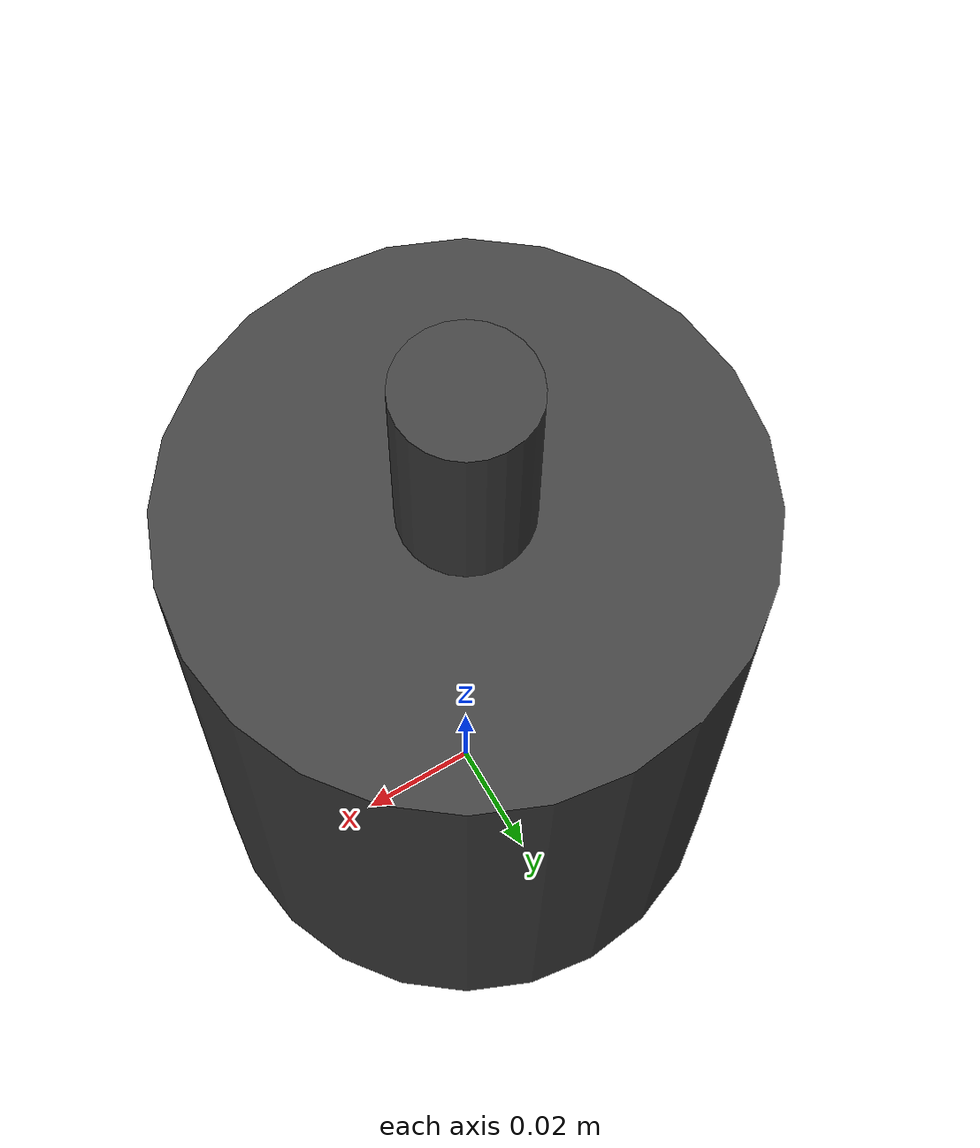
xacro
<?xml version="1.0"?>
<robot name="example_robot" xmlns:xacro="http://www.ros.org/wiki/xacro">

  <xacro:include filename="$(find epick_description)/urdf/epick_single_suction_cup.xacro"/>
  <xacro:arg name="use_fake_hardware" default="true" />

  <link name="world"/>
  <xacro:epick_single_suction_cup parent="world" use_fake_hardware="$(arg use_fake_hardware)"/>

</robot>

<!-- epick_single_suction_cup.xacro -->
<robot xmlns:xacro="http://www.ros.org/wiki/xacro">

  <!-- Include EPick Body and helper macros -->
  <xacro:include filename="epick_body.xacro"/>
  <xacro:include filename="$(find epick_description)/urdf/epick_driver_ros2_control.xacro" />

  <xacro:macro name="epick_single_suction_cup"
               params="parent
                       origin_xyz:='0 0 0'
                       origin_rpy:='0 0 0'
                       prefix:=''
                       suction_cup_radius:=0.010
                       suction_cup_height:=0.034
                       extension_radius:=0.0
                       extension_length:=0.0
                       tcp_stroke_compensation:=0.0
                       use_fake_hardware:=true
                       usb_port:=/dev/ttyUSB0">

    <xacro:epick_driver_ros2_control
      name="epick_driver_ros2_control"
      use_fake_hardware="${use_fake_hardware}"
      usb_port="${usb_port}"
    />

    <!-- Body -->
    <!-- inherits prefix, parent and origin_*, exposes body_link, body_length, body_color -->
    <xacro:epick_body parent="${parent}"/>
    <xacro:property name="suction_cup_parent" value="${body_link}"/>
    <xacro:property name="suction_cup_parent_length" value="${body_length}"/>

    <!-- Extension (optional) -->
    <xacro:if value="${extension_length * extension_radius > 0.0}">
        <xacro:property name="suction_cup_parent" value="${prefix}epick_extension"/>
        <xacro:property name="suction_cup_parent_length" value="${extension_length}"/>
        <xacro:cylinder_link name="${prefix}epick_extension"
                             radius="${extension_radius}"
                             length="${extension_length}"
                             color="${body_color}"
                             parent="${body_link}"
                             origin_xyz="0 0 ${(body_length + extension_length) / 2}"/>
    </xacro:if>

    <!-- Suction Cup -->
    <xacro:cylinder_link name="${prefix}epick_suction_cup"
                         radius="${suction_cup_radius}"
                         length="${suction_cup_height}"
                         color="${body_color}"
                         parent="${suction_cup_parent}"
                         origin_xyz="0 0 ${(suction_cup_parent_length + suction_cup_height) / 2}"/>

    <!-- TIP Frame -->
    <!-- represents the outmost point of the collision geometry -->
    <link name="${prefix}epick_tip"/>
    <xacro:joint parent="${prefix}epick_suction_cup"
                 child="${prefix}epick_tip"
                 xyz="0 0 ${suction_cup_height / 2}"/>

    <!-- TCP Frame -->
    <!-- contact point to use for IK, Z-axis points "forwards", recessed by tcp_stroke_compensation -->
    <link name="${prefix}epick_tcp"/>
    <xacro:joint parent="${prefix}epick_tip"
                 child="${prefix}epick_tcp"
                 xyz="0 0 ${-tcp_stroke_compensation}"/>

    <!-- To allow MoveIt to actuate the gripper as part of a trajectory, we need to include a fake "joint" in the URDF corresponding to the Epick's vacuum state. -->
    <link name="${prefix}epick_vacuum_state"/>
    <joint name="gripper" type="fixed">
      <origin xyz="0 0 0" rpy="0 0 0"/>
      <parent link="${prefix}epick_tcp"/>
      <child link="${prefix}epick_vacuum_state"/>
      <limit effort="30" velocity="1.0" lower="0.0" upper="1.0" />
    </joint>
  </xacro:macro>
</robot>

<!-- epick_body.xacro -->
<robot xmlns:xacro="http://www.ros.org/wiki/xacro">
  <xacro:include filename="helper_macros.xacro"/>
  <xacro:macro name="epick_body"
               params="parent:=^
                       origin_xyz:=^|'0 0 0'
                       origin_rpy:=^|'0 0 0'
                       prefix:=^|''">

    <xacro:property name="base_link" value="${prefix}epick_base_link"/>
    <xacro:property name="body_link" value="${prefix}epick_body" scope="parent"/>
    <xacro:property name="body_length" value="0.1023" scope="parent"/>
    <xacro:property name="body_color" value="0.25 0.25 0.25 1" scope="parent"/>
    <xacro:property name="body_collision_radius" value="0.044"/>

    <link name="${base_link}">
      <inertial>
          <origin xyz="0 0 0" rpy="0 0 0" />
          <mass value="6.6320197e-02" />
          <inertia ixx="5.1617816e-04" iyy="5.8802208e-04" izz="3.9462776e-04" ixy="2.936e-8" ixz="0.0" iyz="-3.2296e-7" />
      </inertial>
    </link>

    <xacro:joint parent="${parent}"
                 child="${base_link}"
                 xyz="${origin_xyz}"
                 rpy="${origin_rpy}"/>

    <link name="${body_link}">
      <visual>
        <origin xyz="0 0 0" rpy="0 0 0"/>
        <geometry>
            <cylinder radius="${body_collision_radius}" length="${body_length}"/>
        </geometry>
        <material name="epick_gray">
          <color rgba="${body_color}"/>
        </material>
      </visual>
      <collision>
        <origin xyz="0 0 0" rpy="0 0 0"/>
        <geometry>
          <cylinder radius="${body_collision_radius}" length="${body_length}"/>
        </geometry>
      </collision>
      <inertial>
        <origin xyz="0 0 0" rpy="0 0 0"/>
        <mass value="0.066320197"/>
        <inertia ixx="0.00051617816" iyy="0.00058802208" izz="0.00039462776" ixy="2.936e-8" ixz="0.0" iyz="-3.2296e-7"/>
      </inertial>
    </link>

    <xacro:joint parent="${base_link}"
                 child="${body_link}"
                 xyz="0 0 ${body_length / 2}"
                 rpy="0 0 0"/>

  </xacro:macro>
</robot>

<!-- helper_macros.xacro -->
<robot xmlns:xacro="http://www.ros.org/wiki/xacro">
  <xacro:macro name="joint"
               params="parent
                       child
                       name:=''
                       type:='fixed'
                       xyz:='0 0 0'
                       rpy:='0 0 0'">

      <xacro:if value="${name == ''}">
        <xacro:property name="name" value="${parent}_to_${child}"/>
      </xacro:if>

      <joint name="${name}" type="fixed">
        <parent link="${parent}"/>
        <child link="${child}"/>
        <origin xyz="${xyz}" rpy="${rpy}"/>
      </joint>

  </xacro:macro>
  <xacro:macro name="cylinder_link"
               params="name
                       radius
                       length
                       parent
                       color:='1 1 1 1'
                       origin_xyz:='0 0 0'
                       origin_rpy:='0 0 0'">

      <link name="${name}">
        <visual>
          <origin xyz="0 0 0" rpy="0 0 0"/>
          <geometry>
            <cylinder radius="${radius}" length="${length}"/>
          </geometry>
          <material name="">
            <color rgba="${color}"/>
          </material>
        </visual>
        <collision>
          <origin xyz="0 0 0" rpy="0 0 0"/>
          <geometry>
            <cylinder radius="${radius}" length="${length}"/>
          </geometry>
        </collision>
      </link>

      <xacro:joint parent="${parent}"
                   child="${name}"
                   xyz="${origin_xyz}"
                   rpy="${origin_rpy}"/>

  </xacro:macro>
</robot>
